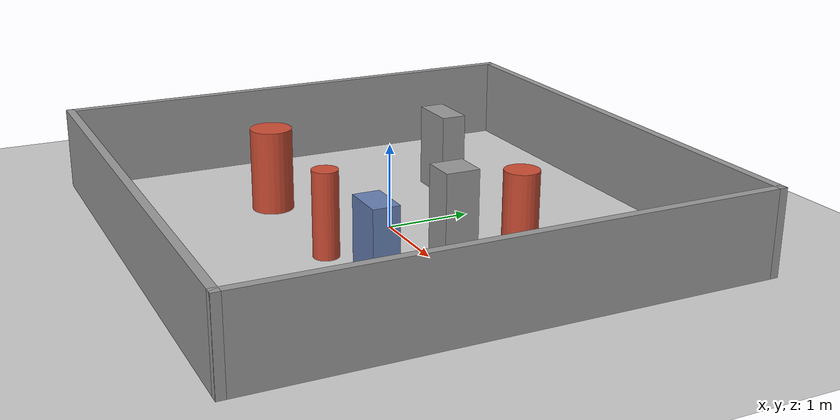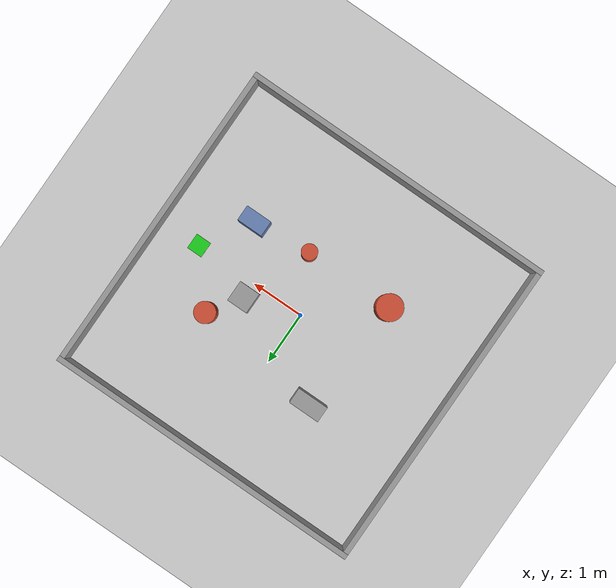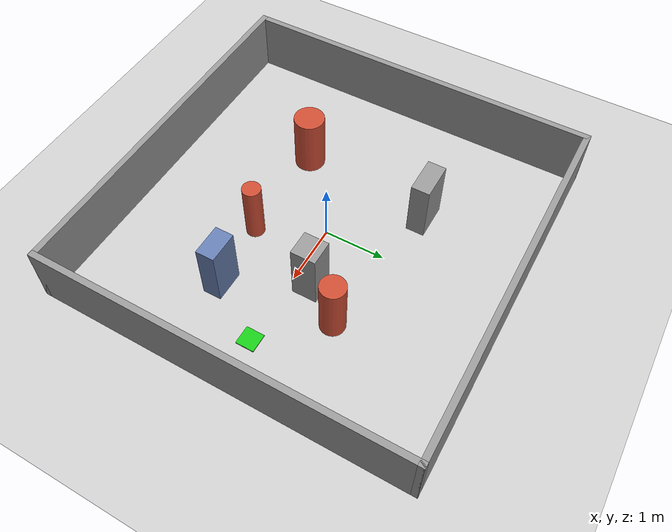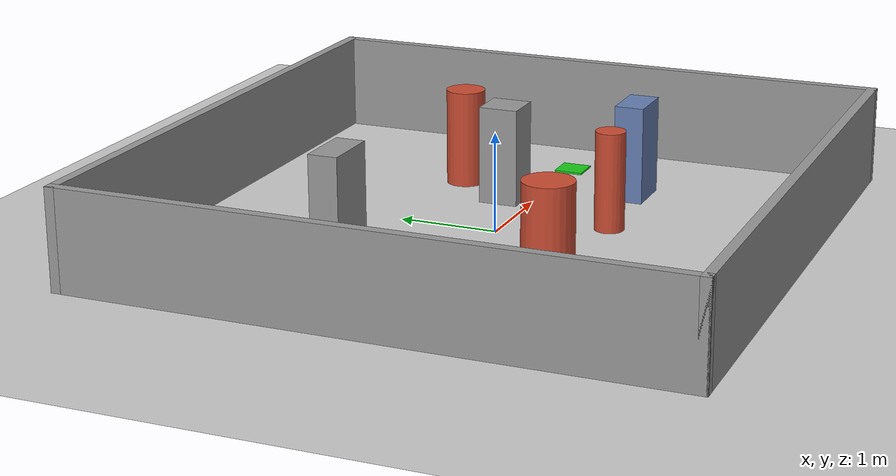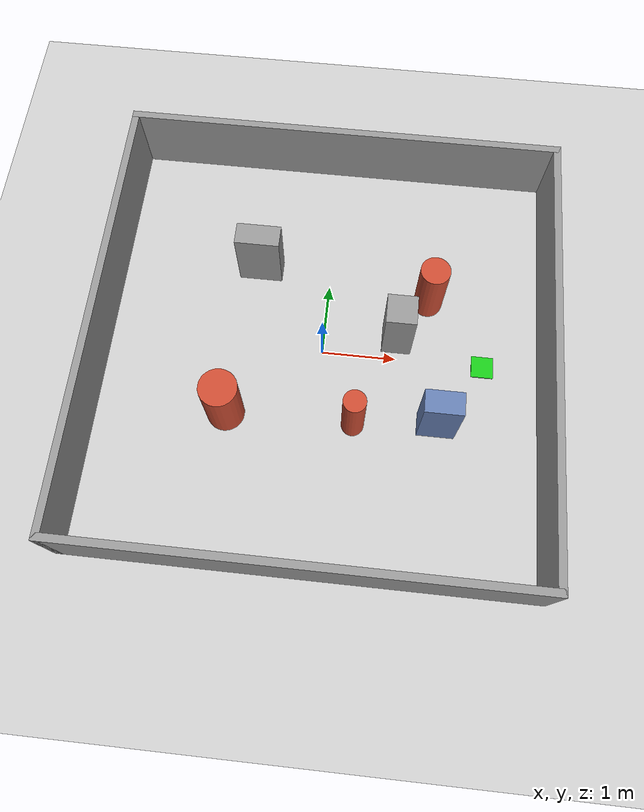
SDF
<sdf version="1.6">
 <world name="default">
  <light name="sun" type="directional">
   <pose>0 0 10 0 -0 0</pose>
   <diffuse>0.8 0.8 0.8 1</diffuse>
   <specular>0.1 0.1 0.1 1</specular>
   <attenuation>
    <range>1000</range>
    <constant>0.9</constant>
    <linear>0.01</linear>
    <quadratic>0.001</quadratic>
   </attenuation>
   <direction>-0.5 0.5 -1</direction>
  </light>
  <model name="ground_plane">
   <static>1</static>
   <link name="link">
    <collision name="collision">
     <geometry><plane><normal>0 0 1</normal><size>100 100</size></plane></geometry>
     <surface><friction><ode><mu>100</mu><mu2>50</mu2></ode></friction></surface>
    </collision>
    <visual name="visual">
     <cast_shadows>0</cast_shadows>
     <geometry><plane><normal>0 0 1</normal><size>100 100</size></plane></geometry>
     <material>
      <script><uri>file://media/materials/scripts/gazebo.material</uri><name>Gazebo/Grey</name></script>
     </material>
    </visual>
   </link>
  </model>
  <gravity>0 0 -9.8</gravity>
  <magnetic_field>6e-06 2.3e-05 -4.2e-05</magnetic_field>
  <atmosphere type="adiabatic"/>
  <physics name="default_physics" default="0" type="ode">
   <max_step_size>0.001</max_step_size>
   <real_time_factor>1</real_time_factor>
   <real_time_update_rate>1000</real_time_update_rate>
  </physics>
  <scene><ambient>0.4 0.4 0.4 1</ambient><background>0.7 0.7 0.7 1</background><shadows>1</shadows></scene>
  <spherical_coordinates>
   <surface_model>EARTH_WGS84</surface_model>
   <latitude_deg>0</latitude_deg>
   <longitude_deg>0</longitude_deg>
   <elevation>0</elevation>
   <heading_deg>0</heading_deg>
  </spherical_coordinates>
  <model name="wall_n">
   <static>1</static>
   <pose>0 3 0.5 0 0 0</pose>
   <link name="l">
    <collision name="c"><geometry><box><size>6.1 0.1 1.0</size></box></geometry></collision>
    <visual name="v">
     <geometry><box><size>6.1 0.1 1.0</size></box></geometry>
     <material><ambient>0.6 0.6 0.6 1</ambient><diffuse>0.6 0.6 0.6 1</diffuse></material>
    </visual>
   </link>
  </model>
  <model name="wall_s">
   <static>1</static>
   <pose>0 -3 0.5 0 0 0</pose>
   <link name="l">
    <collision name="c"><geometry><box><size>6.1 0.1 1.0</size></box></geometry></collision>
    <visual name="v">
     <geometry><box><size>6.1 0.1 1.0</size></box></geometry>
     <material><ambient>0.6 0.6 0.6 1</ambient><diffuse>0.6 0.6 0.6 1</diffuse></material>
    </visual>
   </link>
  </model>
  <model name="wall_e">
   <static>1</static>
   <pose>3 0 0.5 0 0 0</pose>
   <link name="l">
    <collision name="c"><geometry><box><size>0.1 6.1 1.0</size></box></geometry></collision>
    <visual name="v">
     <geometry><box><size>0.1 6.1 1.0</size></box></geometry>
     <material><ambient>0.6 0.6 0.6 1</ambient><diffuse>0.6 0.6 0.6 1</diffuse></material>
    </visual>
   </link>
  </model>
  <model name="wall_w">
   <static>1</static>
   <pose>-3 0 0.5 0 0 0</pose>
   <link name="l">
    <collision name="c"><geometry><box><size>0.1 6.1 1.0</size></box></geometry></collision>
    <visual name="v">
     <geometry><box><size>0.1 6.1 1.0</size></box></geometry>
     <material><ambient>0.6 0.6 0.6 1</ambient><diffuse>0.6 0.6 0.6 1</diffuse></material>
    </visual>
   </link>
  </model>
  <model name="box1">
   <static>1</static>
   <pose>1.0 0.3 0.5 0 0 0</pose>
   <link name="l">
    <collision name="c"><geometry><box><size>0.4 0.4 1.0</size></box></geometry></collision>
    <visual name="v">
     <geometry><box><size>0.4 0.4 1.0</size></box></geometry>
     <material><ambient>0.6 0.6 0.6 1</ambient><diffuse>0.6 0.6 0.6 1</diffuse></material>
    </visual>
   </link>
  </model>
  <model name="box2">
   <static>1</static>
   <pose>1.6 -0.9 0.5 0 0 0</pose>
   <link name="l">
    <collision name="c"><geometry><box><size>0.5 0.3 1.0</size></box></geometry></collision>
    <visual name="v">
     <geometry><box><size>0.5 0.3 1.0</size></box></geometry>
     <material><ambient>0.4 0.5 0.7 1</ambient><diffuse>0.4 0.5 0.7 1</diffuse></material>
    </visual>
   </link>
  </model>
  <model name="cyl1">
   <static>1</static>
   <pose>1.4 0.9 0.5 0 0 0</pose>
   <link name="l">
    <collision name="c">
     <geometry><cylinder><radius>0.2</radius><length>1.0</length></cylinder></geometry>
    </collision>
    <visual name="v">
     <geometry><cylinder><radius>0.2</radius><length>1.0</length></cylinder></geometry>
     <material><ambient>0.8 0.3 0.2 1</ambient><diffuse>0.8 0.3 0.2 1</diffuse></material>
    </visual>
   </link>
  </model>
  <model name="cyl2">
   <static>1</static>
   <pose>0.5 -1.0 0.5 0 0 0</pose>
   <link name="l">
    <collision name="c">
     <geometry><cylinder><radius>0.15</radius><length>1.0</length></cylinder></geometry>
    </collision>
    <visual name="v">
     <geometry><cylinder><radius>0.15</radius><length>1.0</length></cylinder></geometry>
     <material><ambient>0.8 0.3 0.2 1</ambient><diffuse>0.8 0.3 0.2 1</diffuse></material>
    </visual>
   </link>
  </model>
  <model name="box3">
   <static>1</static>
   <pose>-1.0 1.2 0.5 0 0 0</pose>
   <link name="l">
    <collision name="c"><geometry><box><size>0.6 0.3 1.0</size></box></geometry></collision>
    <visual name="v">
     <geometry><box><size>0.6 0.3 1.0</size></box></geometry>
     <material><ambient>0.6 0.6 0.6 1</ambient><diffuse>0.6 0.6 0.6 1</diffuse></material>
    </visual>
   </link>
  </model>
  <model name="cyl3">
   <static>1</static>
   <pose>-1.2 -1.0 0.5 0 0 0</pose>
   <link name="l">
    <collision name="c">
     <geometry><cylinder><radius>0.25</radius><length>1.0</length></cylinder></geometry>
    </collision>
    <visual name="v">
     <geometry><cylinder><radius>0.25</radius><length>1.0</length></cylinder></geometry>
     <material><ambient>0.8 0.3 0.2 1</ambient><diffuse>0.8 0.3 0.2 1</diffuse></material>
    </visual>
   </link>
  </model>
  <model name="goal_marker">
   <static>1</static>
   <pose>2.2 0 0.01 0 0 0</pose>
   <link name="l">
    <collision name="c"><geometry><box><size>0.3 0.3 0.02</size></box></geometry></collision>
    <visual name="v">
     <geometry><box><size>0.3 0.3 0.02</size></box></geometry>
     <material><ambient>0.1 0.8 0.1 1</ambient><diffuse>0.1 0.8 0.1 1</diffuse></material>
    </visual>
   </link>
  </model>
 </world>
</sdf>
